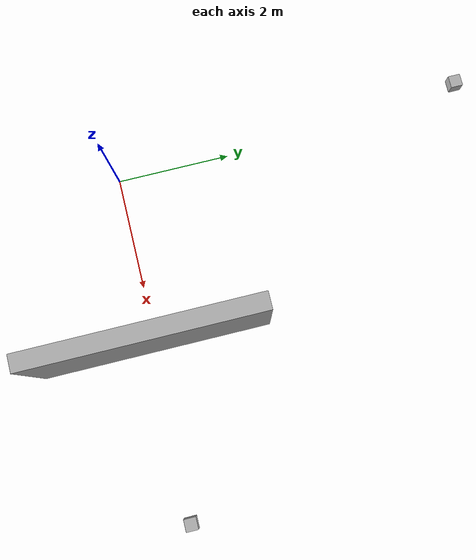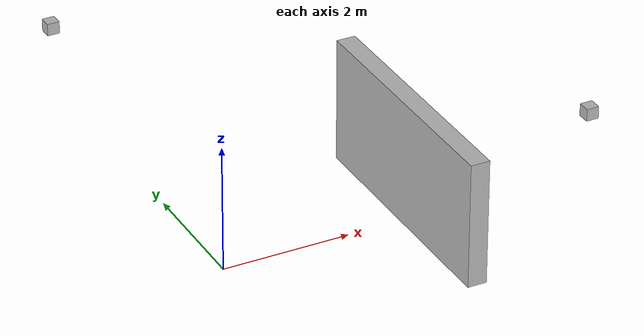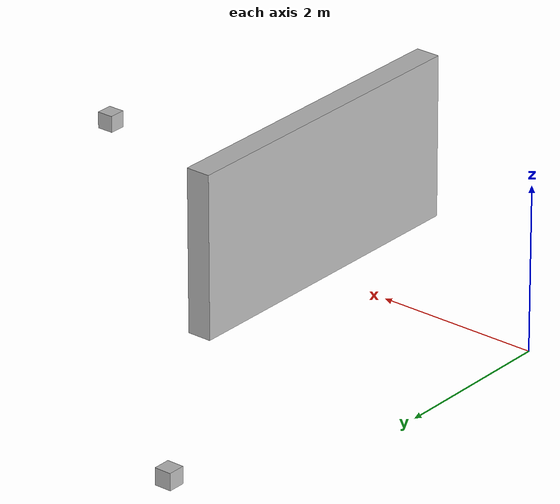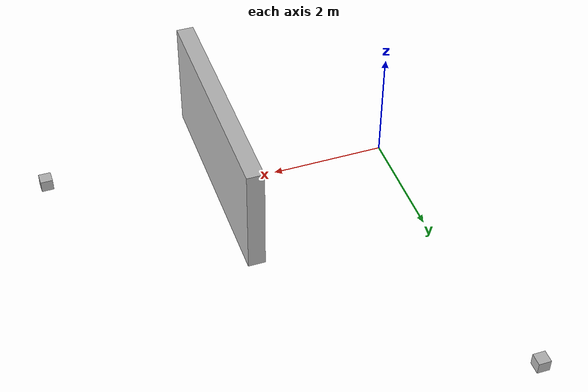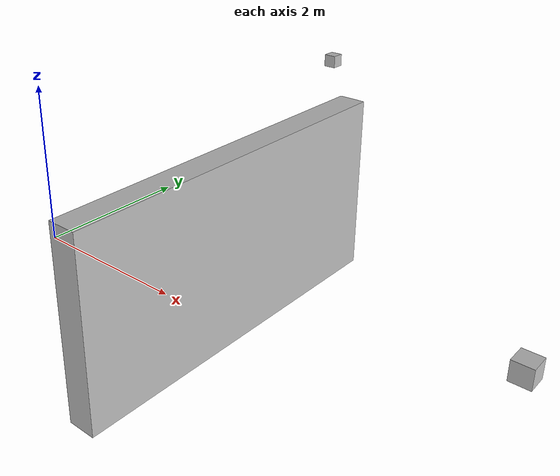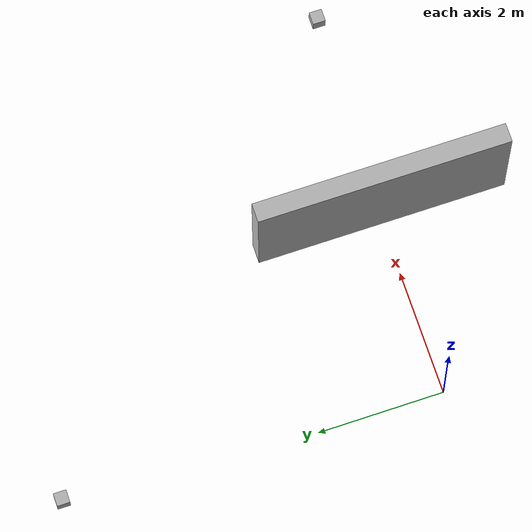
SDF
<?xml version="1.0" ?>
<sdf version="1.9">
  <world name="uwb_demo">
    <plugin filename="gz-sim-physics-system" name="gz::sim::systems::Physics"/>
    <plugin filename="gz-sim-scene-broadcaster-system" name="gz::sim::systems::SceneBroadcaster"/>

    <model name="ground"><static>true</static>
      <link name="link"><collision name="c"><geometry><plane>
        <normal>0 0 1</normal><size>50 50</size></plane></geometry></collision>
      </link></model>

    <!-- anchors: visual-only, names start with the prefix -->
    <model name="uwb_anchor0"><static>true</static><pose>6 0 1 0 0 0</pose>
      <link name="link"><visual name="v"><geometry><box><size>0.2 0.2 0.2</size></box></geometry></visual></link></model>
    <model name="uwb_anchor1"><static>true</static><pose>0 6 1 0 0 0</pose>
      <link name="link"><visual name="v"><geometry><box><size>0.2 0.2 0.2</size></box></geometry></visual></link></model>

    <!-- a wall between the tag and anchor0 -->
    <model name="wall"><static>true</static><pose>3 0 1 0 0 0</pose>
      <link name="link"><collision name="c"><geometry><box><size>0.3 4 2</size></box></geometry></collision>
      <visual name="v"><geometry><box><size>0.3 4 2</size></box></geometry></visual></link></model>

    <!-- the tag, carrying the plugin -->
    <model name="tag"><pose>0 0 1 0 0 0</pose>
      <link name="tag_0"><collision name="c"><geometry><box><size>0.1 0.1 0.1</size></box></geometry></collision></link>
      <plugin filename="gtec_uwb_plugin" name="gtec::UwbSensorPlugin">
        <update_rate>25</update_rate>
        <nlosSoftWallWidth>0.25</nlosSoftWallWidth>
        <tag_z_offset>0.0</tag_z_offset>
        <tag_link>tag_0</tag_link>
        <anchor_prefix>uwb_anchor</anchor_prefix>
        <all_los>false</all_los>
        <tag_id>0</tag_id>
        <return_angle>true</return_angle>
      </plugin>
    </model>
  </world>
</sdf>
